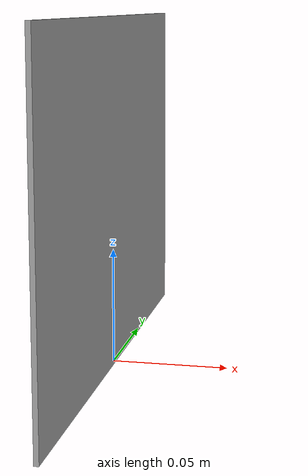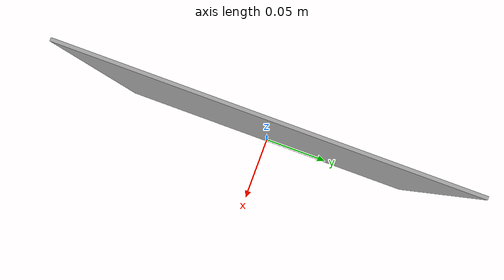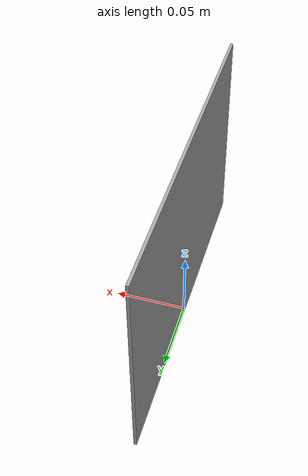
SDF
<?xml version="1.0"?>
<sdf version="1.6">
  <model name="thin_plate_4person">
    <static>true</static>

    <link name="plate_link">
      <pose>0 0 0.075 0 0 0</pose>

      <collision name="plate_collision">
        <geometry>
          <box>
            <size>0.002 0.230 0.150</size>
          </box>
        </geometry>
      </collision>

      <visual name="plate_visual">
        <geometry>
          <box>
            <size>0.002 0.230 0.150</size>
          </box>
        </geometry>

        <material>
          <ambient>0.65 0.65 0.65 1</ambient>
          <diffuse>0.65 0.65 0.65 1</diffuse>
        </material>
      </visual>
    </link>
  </model>
</sdf>
